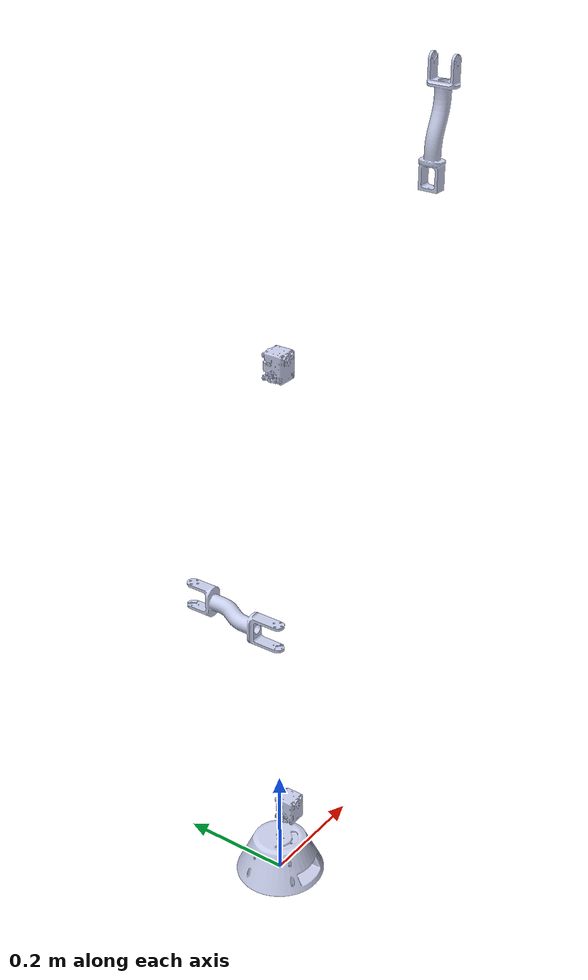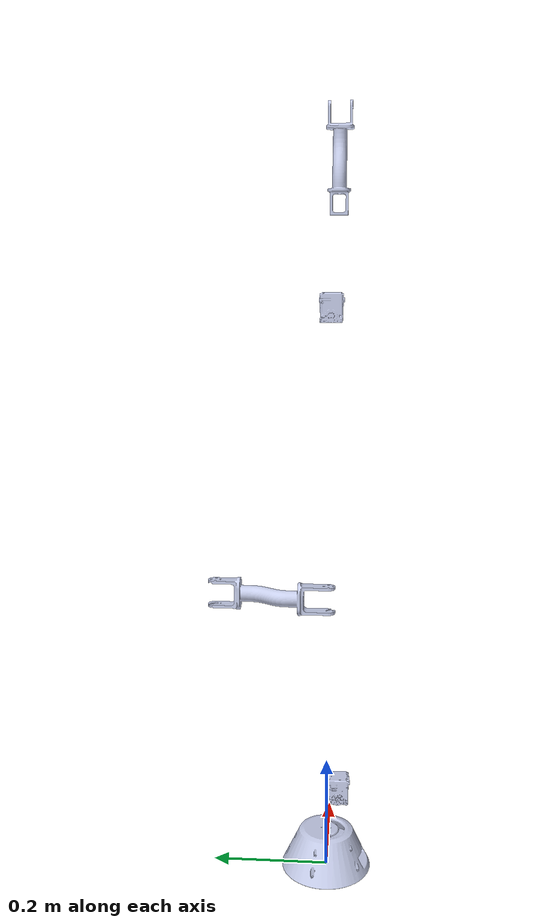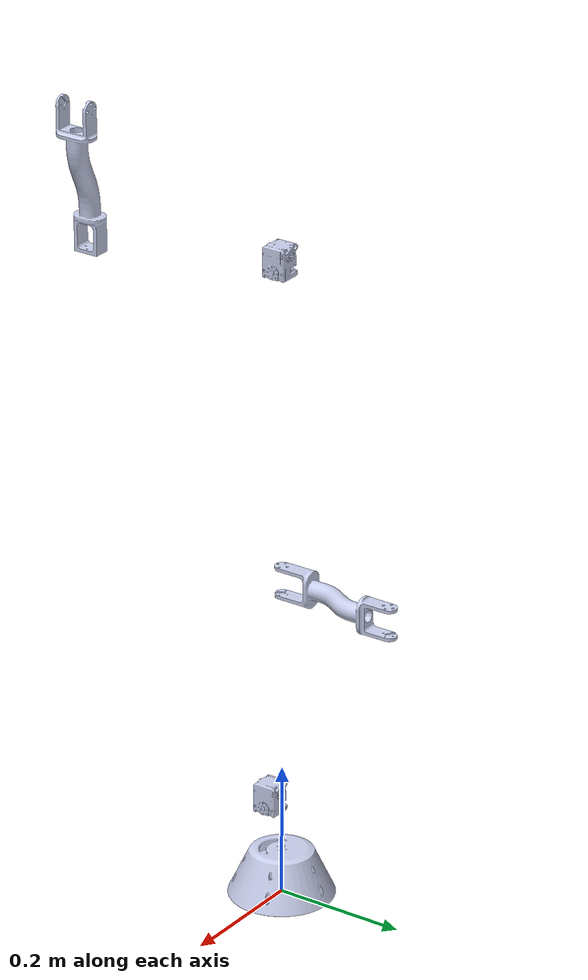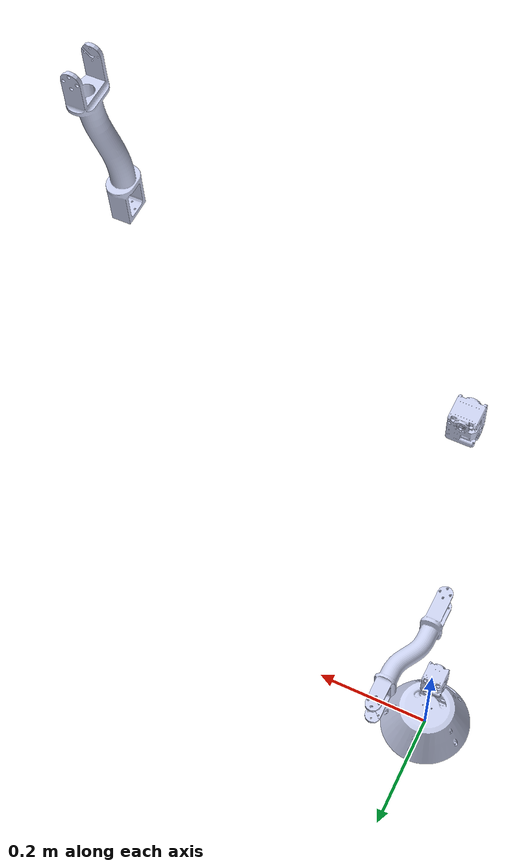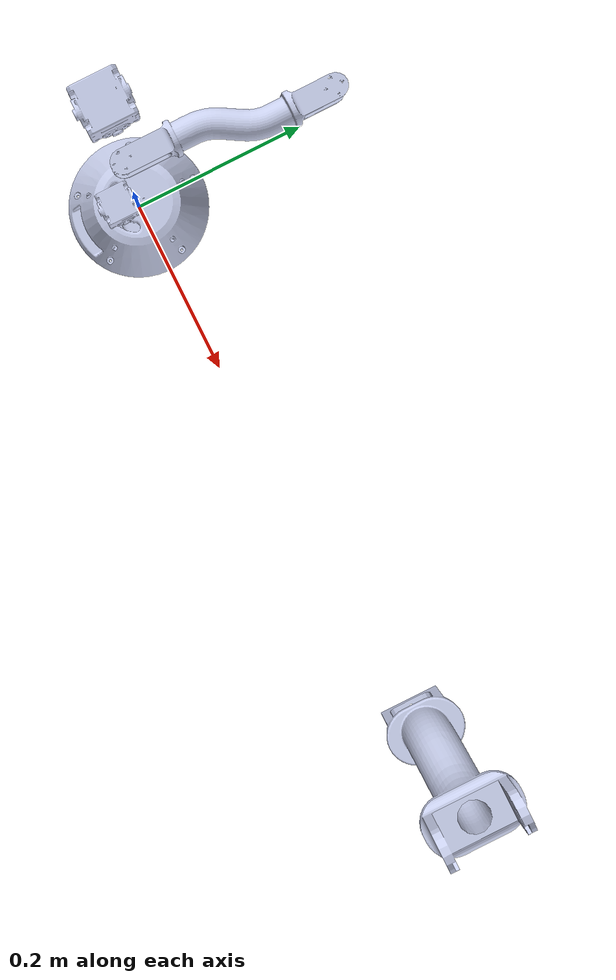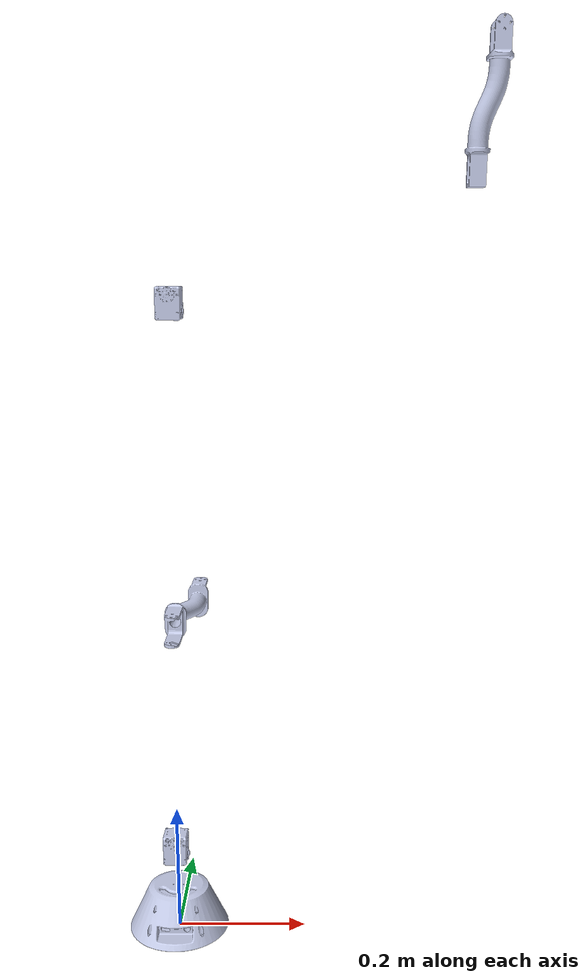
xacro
<?xml version="1.0"?>

<robot xmlns:xacro="http://www.ros.org/wiki/xacro"  name="manipulator">

  <link name="base_footprint"/>
  <joint name="base_joint" type="fixed">
    <parent link="base_footprint"/>
    <child link="base_link"/>
    <origin xyz="0 0 0" rpy="0 0 0"/>
  </joint>
  <link
    name="base_link">
    <inertial>
      <origin
        xyz="7.2577E-09 -0.031297 0.093199"
        rpy="0 0 0" />
      <mass
        value="20.05" />
      <inertia
        ixx="0.42459"
        ixy="2.2307E-08"
        ixz="5.8415E-08"
        iyy="0.34019"
        iyz="0.040988"
        izz="0.49886" />
    </inertial>
    <visual>
      <origin
        xyz="0 0 0"
        rpy="0 0 0" />
      <geometry>
        <mesh
          filename="package://manipulator_description/meshes/base_link.STL" />
      </geometry>
      <material
        name="">
        <color
          rgba="0.79216 0.81961 0.93333 1" />
      </material>
    </visual>
    <collision>
      <origin
        xyz="0 0 0"
        rpy="0 0 0" />
      <geometry>
        <mesh
          filename="package://manipulator_description/meshes/base_link.STL" />
      </geometry>
    </collision>
  </link>
  <link
    name="link_1">
    <inertial>
      <origin
        xyz="-1.5626E-10 0.21308 1.1102E-16"
        rpy="0 0 0" />
      <mass
        value="14.515" />
      <inertia
        ixx="0.28139"
        ixy="-1.2685E-09"
        ixz="1.2578E-09"
        iyy="0.10949"
        iyz="-1.4778E-17"
        izz="0.30806" />
    </inertial>
    <visual>
      <origin
        xyz="0 0 0"
        rpy="0 0 0" />
      <geometry>
        <mesh
          filename="package://manipulator_description/meshes/link_1.STL" />
      </geometry>
      <material
        name="">
        <color
          rgba="0.79216 0.81961 0.93333 1" />
      </material>
    </visual>
    <collision>
      <origin
        xyz="0 0 0"
        rpy="0 0 0" />
      <geometry>
        <mesh
          filename="package://manipulator_description/meshes/link_1.STL" />
      </geometry>
    </collision>
  </link>
  <joint
    name="joint_1"
    type="revolute">
    <origin
      xyz="0 0 0.16"
      rpy="1.5708 0 0" />
    <parent
      link="base_link" />
    <child
      link="link_1" />
    <axis
      xyz="0 1 0" />
    <limit
      lower="0"
      upper="3.142"
      effort="300"
      velocity="3" />
  </joint>
  <link
    name="link_2">
    <inertial>
      <origin
        xyz="7.9787E-10 2.6404E-11 -0.19156"
        rpy="0 0 0" />
      <mass
        value="15.461" />
      <inertia
        ixx="0.71519"
        ixy="-2.5469E-10"
        ixz="2.0918E-09"
        iyy="0.62073"
        iyz="9.6415E-11"
        izz="0.15696" />
    </inertial>
    <visual>
      <origin
        xyz="0 0 0"
        rpy="0 0 0" />
      <geometry>
        <mesh
          filename="package://manipulator_description/meshes/link_2.STL" />
      </geometry>
      <material
        name="">
        <color
          rgba="0.79216 0.81961 0.93333 1" />
      </material>
    </visual>
    <collision>
      <origin
        xyz="0 0 0"
        rpy="0 0 0" />
      <geometry>
        <mesh
          filename="package://manipulator_description/meshes/link_2.STL" />
      </geometry>
    </collision>
  </link>
  <joint
    name="joint_2"
    type="revolute">
    <origin
      xyz="0 0.336 0"
      rpy="-1.5708 0 3.1243" />
    <parent
      link="link_1" />
    <child
      link="link_2" />
    <axis
      xyz="0 -1 0" />
    <limit
      lower="-1.57"
      upper="1.57"
      effort="200"
      velocity="3" />
  </joint>
  <link
    name="link_3">
    <inertial>
      <origin
        xyz="0.13619 0.12118 7.1719E-10"
        rpy="0 0 0" />
      <mass
        value="12.06" />
      <inertia
        ixx="0.075233"
        ixy="-0.039898"
        ixz="-2.2298E-10"
        iyy="0.3384"
        iyz="-8.9743E-10"
        izz="0.37074" />
    </inertial>
    <visual>
      <origin
        xyz="0 0 0"
        rpy="0 0 0" />
      <geometry>
        <mesh
          filename="package://manipulator_description/meshes/link_3.STL" />
      </geometry>
      <material
        name="">
        <color
          rgba="0.79216 0.81961 0.93333 1" />
      </material>
    </visual>
    <collision>
      <origin
        xyz="0 0 0"
        rpy="0 0 0" />
      <geometry>
        <mesh
          filename="package://manipulator_description/meshes/link_3.STL" />
      </geometry>
    </collision>
  </link>
  <joint
    name="joint_3"
    type="revolute">
    <origin
      xyz="0 0 -0.5"
      rpy="-1.5708 0.017244 3.1416" />
    <parent
      link="link_2" />
    <child
      link="link_3" />
    <axis
      xyz="0 0 1" />
    <limit
      lower="0"
      upper="3.142"
      effort="200"
      velocity="3" />
  </joint>
  <link
    name="link_4">
    <inertial>
      <origin
        xyz="0.023573 4.3615E-08 -2.3893E-09"
        rpy="0 0 0" />
      <mass
        value="1.1724" />
      <inertia
        ixx="0.0021334"
        ixy="-1.5043E-09"
        ixz="-2.9639E-11"
        iyy="0.0061469"
        iyz="-1.2799E-09"
        izz="0.0066548" />
    </inertial>
    <visual>
      <origin
        xyz="0 0 0"
        rpy="0 0 0" />
      <geometry>
        <mesh
          filename="package://manipulator_description/meshes/link_4.STL" />
      </geometry>
      <material
        name="">
        <color
          rgba="0.79216 0.81961 0.93333 1" />
      </material>
    </visual>
    <collision>
      <origin
        xyz="0 0 0"
        rpy="0 0 0" />
      <geometry>
        <mesh
          filename="package://manipulator_description/meshes/link_4.STL" />
      </geometry>
    </collision>
  </link>
  <joint
    name="joint_4"
    type="revolute">
    <origin
      xyz="0.42746 0.145 0"
      rpy="0 0 -0.017244" />
    <parent
      link="link_3" />
    <child
      link="link_4" />
    <axis
      xyz="0 0 1" />
    <limit
      lower="-3.142"
      upper="3.142"
      effort="200"
      velocity="3" />
  </joint>

</robot>
